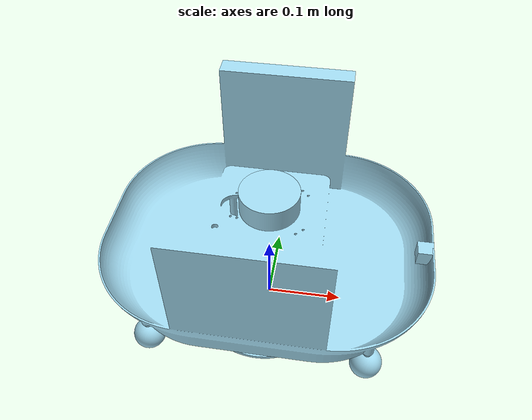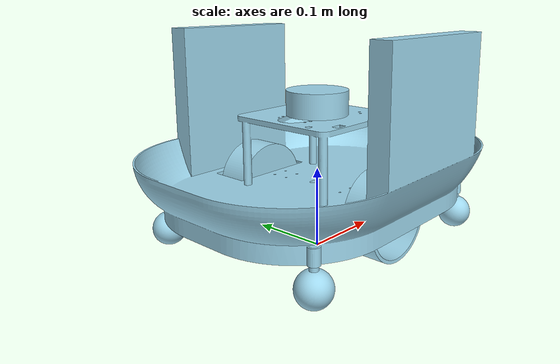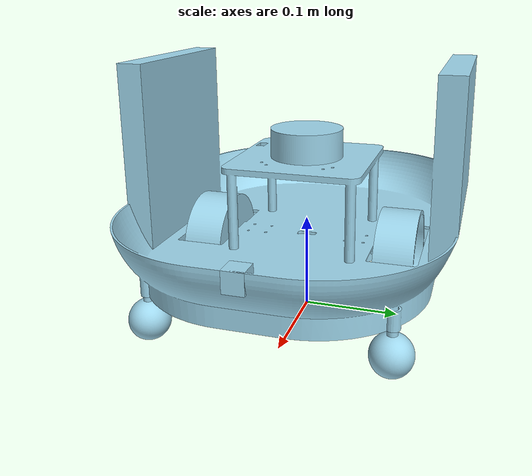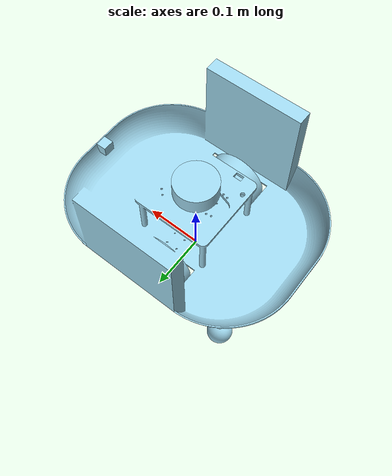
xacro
<?xml version="1.0" ?>
<robot name="servicebot" xmlns:xacro="http://www.ros.org/wiki/xacro">

<!-- Start GZ or Ignition depending on ROS 2 Version -->
<xacro:arg name="is_ignition" default="true"/>

<!-- Load Simulated or Real Hardware Interfaces -->
<xacro:arg name="is_sim" default="true"/>
<xacro:arg name="serial_device" default="/dev/ttyACM0"/>

<xacro:include filename="$(find alphabot_description)/urdf/servicebot/materials.xacro" />
<xacro:include filename="$(find alphabot_description)/urdf/servicebot/servicebot_ros2_control.xacro" />
<xacro:include filename="$(find alphabot_description)/urdf/servicebot/servicebot_gazebo.xacro" />

<link name="base_footprint"/>

<joint name="base_joint" type="fixed">
  <parent link="base_footprint"/>
  <child link="base_link"/>
  <origin xyz="0.0 0.0 0.06" rpy="0.0 0.0 0.0"/>
</joint>

<link name="base_link">
  <inertial>
    <origin xyz="0.00015928609392934425 -0.0013995503284914461 0.09565139983008487" rpy="0 0 0"/>
    <mass value="16.475311088309144"/>
    <inertia ixx="0.344952" iyy="0.14359" izz="0.364918" ixy="1e-05" iyz="-0.002295" ixz="-2.5e-05"/>
  </inertial>
  <visual>
    <origin xyz="0 0 0" rpy="${pi/2} 0 0"/>
    <geometry>
      <mesh filename="file://$(find alphabot_description)/meshes/servicebot/base_link.stl" scale="0.001 0.001 0.001"/>
    </geometry>
    <material name="silver"/>
  </visual>
  <collision>
    <origin xyz="0 0 0" rpy="${pi/2} 0 0"/>
    <geometry>
      <mesh filename="file://$(find alphabot_description)/meshes/servicebot/base_link.stl" scale="0.001 0.001 0.001"/>
    </geometry>
  </collision>
</link>

<link name="caster_back_right_link">
  <inertial>
    <origin xyz="-6.800116025829084e-15 2.7755575615628914e-17 -0.024725104605341525" rpy="0 0 0"/>
    <mass value="0.26633343616094135"/>
    <inertia ixx="4.4e-05" iyy="4.4e-05" izz="4.2e-05" ixy="0.0" iyz="0.0" ixz="0.0"/>
  </inertial>
  <visual>
    <origin xyz="0.1375 0.115 0.0" rpy="${pi/2} 0 0"/>
    <geometry>
      <mesh filename="file://$(find alphabot_description)/meshes/servicebot/Caster_Wheel_back_right_1.stl" scale="0.001 0.001 0.001"/>
    </geometry>
    <material name="silver"/>
  </visual>
  <collision>
    <origin xyz="0.1375 0.115 0.0" rpy="${pi/2} 0 0"/>
    <geometry>
      <mesh filename="file://$(find alphabot_description)/meshes/servicebot/Caster_Wheel_back_right_1.stl" scale="0.001 0.001 0.001"/>
    </geometry>
  </collision>
</link>

<link name="caster_front_right_link">
  <inertial>
    <origin xyz="-6.827871601444713e-15 0.0 -0.024725104605341525" rpy="0 0 0"/>
    <mass value="0.26633343616094135"/>
    <inertia ixx="4.4e-05" iyy="4.4e-05" izz="4.2e-05" ixy="0.0" iyz="0.0" ixz="0.0"/>
  </inertial>
  <visual>
    <origin xyz="-0.1375 0.115 0.0" rpy="${pi/2} 0 0"/>
    <geometry>
      <mesh filename="file://$(find alphabot_description)/meshes/servicebot/Caster_Wheel_front_right_1.stl" scale="0.001 0.001 0.001"/>
    </geometry>
    <material name="silver"/>
  </visual>
  <collision>
    <origin xyz="-0.1375 0.115 0.0" rpy="${pi/2} 0 0"/>
    <geometry>
      <mesh filename="file://$(find alphabot_description)/meshes/servicebot/Caster_Wheel_front_right_1.stl" scale="0.001 0.001 0.001"/>
    </geometry>
  </collision>
</link>

<link name="caster_front_left_link">
  <inertial>
    <origin xyz="-6.827871601444713e-15 1.3877787807814457e-17 -0.024725104605341525" rpy="0 0 0"/>
    <mass value="0.26633343616094135"/>
    <inertia ixx="4.4e-05" iyy="4.4e-05" izz="4.2e-05" ixy="0.0" iyz="0.0" ixz="0.0"/>
  </inertial>
  <visual>
    <origin xyz="-0.1375 -0.115 0.0" rpy="${pi/2} 0 0"/>
    <geometry>
      <mesh filename="file://$(find alphabot_description)/meshes/servicebot/Caster_Wheel_front_left_1.stl" scale="0.001 0.001 0.001"/>
    </geometry>
    <material name="silver"/>
  </visual>
  <collision>
    <origin xyz="-0.1375 -0.115 0.0" rpy="${pi/2} 0 0"/>
    <geometry>
      <mesh filename="file://$(find alphabot_description)/meshes/servicebot/Caster_Wheel_front_left_1.stl" scale="0.001 0.001 0.001"/>
    </geometry>
  </collision>
</link>

<link name="caster_back_left_link">
  <inertial>
    <origin xyz="-6.855627177060342e-15 1.3877787807814457e-17 -0.024725104605341525" rpy="0 0 0"/>
    <mass value="0.26633343616094135"/>
    <inertia ixx="4.4e-05" iyy="4.4e-05" izz="4.2e-05" ixy="0.0" iyz="0.0" ixz="0.0"/>
  </inertial>
  <visual>
    <origin xyz="0.1375 -0.115 0.0" rpy="${pi/2} 0 0"/>
    <geometry>
      <mesh filename="file://$(find alphabot_description)/meshes/servicebot/Caster_Wheel_back_left_1.stl" scale="0.001 0.001 0.001"/>
    </geometry>
    <material name="silver"/>
  </visual>
  <collision>
    <origin xyz="0.1375 -0.115 0.0" rpy="${pi/2} 0 0"/>
    <geometry>
      <mesh filename="file://$(find alphabot_description)/meshes/servicebot/Caster_Wheel_back_left_1.stl" scale="0.001 0.001 0.001"/>
    </geometry>
  </collision>
</link>

<link name="wheel_left_link">
  <inertial>
    <origin xyz="-3.833236267638553e-07 -0.006509554140127535 3.8537422030957e-07" rpy="0 0 0"/>
    <mass value="0.619496938546679"/>
    <inertia ixx="0.000683" iyy="0.001171" izz="0.000683" ixy="0.0" iyz="0.0" ixz="0.0"/>
  </inertial>
  <visual>
    <origin xyz="0.00025 0.1 -0.005999" rpy="${pi/2} 0 0"/>
    <geometry>
      <mesh filename="file://$(find alphabot_description)/meshes/servicebot/left_wheel_1.stl" scale="0.001 0.001 0.001"/>
    </geometry>
    <material name="silver"/>
  </visual>
  <collision>
    <origin xyz="0.00025 0.1 -0.005999" rpy="${pi/2} 0 0"/>
    <geometry>
      <mesh filename="file://$(find alphabot_description)/meshes/servicebot/left_wheel_1.stl" scale="0.001 0.001 0.001"/>
    </geometry>
  </collision>
</link>

<link name="wheel_right_link">
  <inertial>
    <origin xyz="-3.826109625384251e-07 0.00650955414012741 3.853742181775949e-07" rpy="0 0 0"/>
    <mass value="0.619496938546679"/>
    <inertia ixx="0.000683" iyy="0.001171" izz="0.000683" ixy="0.0" iyz="0.0" ixz="0.0"/>
  </inertial>
  <visual>
    <origin xyz="0.00025 0.1 -0.005999" rpy="${pi/2} 0 0"/>
    <geometry>
      <mesh filename="file://$(find alphabot_description)/meshes/servicebot/right_wheel_1.stl" scale="0.001 0.001 0.001"/>
    </geometry>
    <material name="silver"/>
  </visual>
  <collision>
    <origin xyz="0.00025 0.1 -0.005999" rpy="${pi/2} 0 0"/>
    <geometry>
      <mesh filename="file://$(find alphabot_description)/meshes/servicebot/right_wheel_1.stl" scale="0.001 0.001 0.001"/>
    </geometry>
  </collision>
</link>

<link name="laser_link">
  <inertial>
    <origin xyz="1.8618140946392387e-14 8.931975391188309e-09 0.015000000000000027" rpy="0 0 0"/>
    <mass value="1.0404071295755573"/>
    <inertia ixx="0.000444" iyy="0.000444" izz="0.000732" ixy="0.0" iyz="0.0" ixz="0.0"/>
  </inertial>
  <visual>
    <origin xyz="0.0 0.0 -0.108" rpy="${pi/2} 0 0"/>
    <geometry>
      <mesh filename="file://$(find alphabot_description)/meshes/servicebot/laser_link_1.stl" scale="0.001 0.001 0.001"/>
    </geometry>
    <material name="silver"/>
  </visual>
  <collision>
    <origin xyz="0.0 0.0 -0.108" rpy="${pi/2} 0 0"/>
    <geometry>
      <mesh filename="file://$(find alphabot_description)/meshes/servicebot/laser_link_1.stl" scale="0.001 0.001 0.001"/>
    </geometry>
  </collision>
</link>

<link name="camera_link">
  <inertial>
    <origin xyz="-0.010000000000000037 -5.329070518200751e-17 -0.009999999999999988" rpy="0 0 0"/>
    <mass value="0.0628"/>
    <inertia ixx="4e-06" iyy="4e-06" izz="4e-06" ixy="0.0" iyz="0.0" ixz="0.0"/>
  </inertial>
  <visual>
    <origin xyz="-0.207 0.0 -0.068" rpy="${pi/2} 0 0"/>
    <geometry>
      <mesh filename="file://$(find alphabot_description)/meshes/servicebot/camera_link_1.stl" scale="0.001 0.001 0.001"/>
    </geometry>
    <material name="silver"/>
  </visual>
  <collision>
    <origin xyz="-0.207 0.0 -0.068" rpy="${pi/2} 0 0"/>
    <geometry>
      <mesh filename="file://$(find alphabot_description)/meshes/servicebot/camera_link_1.stl" scale="0.001 0.001 0.001"/>
    </geometry>
  </collision>
</link>

<link name="imu_link">
  <inertial>
    <mass value="0.001"/>
    <origin xyz="0 0 0" rpy="0 0 0"/>
    <inertia ixx="0.00000015" ixy="0" ixz="0" iyy="0.00000015" iyz="0" izz="0.00000015"/>
  </inertial>
  <visual>
    <origin xyz="0 0 0" rpy="0 0 0"/>
    <geometry>
      <box size="0.005 0.005 0.005"/>
    </geometry>
  </visual>
  <collision>
    <origin xyz="0 0 0" rpy="0 0 0"/>
    <geometry>
      <box size="0.005 0.005 0.005"/>
    </geometry>
  </collision>
</link>

<joint name="caster_back_right_joint" type="fixed">
  <origin xyz="-0.1375 -0.115 0.0" rpy="0 0 0"/>
  <parent link="base_link"/>
  <child link="caster_back_right_link"/>
</joint>

<joint name="caster_front_right_joint" type="fixed">
  <origin xyz="0.1375 -0.115 0.0" rpy="0 0 0"/>
  <parent link="base_link"/>
  <child link="caster_front_right_link"/>
</joint>

<joint name="caster_front_left_joint" type="fixed">
  <origin xyz="0.1375 0.115 0.0" rpy="0 0 0"/>
  <parent link="base_link"/>
  <child link="caster_front_left_link"/>
</joint>

<joint name="caster_back_left_joint" type="fixed">
  <origin xyz="-0.1375 0.115 0.0" rpy="0 0 0"/>
  <parent link="base_link"/>
  <child link="caster_back_left_link"/>
</joint>

<joint name="wheel_left_joint" type="continuous">
  <origin xyz="-0.00025 0.1 0.005999" rpy="0 0 0"/>
  <parent link="base_link"/>
  <child link="wheel_left_link"/>
  <axis xyz="0.0 1.0 0.0"/>
</joint>

<joint name="wheel_right_joint" type="continuous">
  <origin xyz="-0.00025 -0.1 0.005999" rpy="0 0 0"/>
  <parent link="base_link"/>
  <child link="wheel_right_link"/>
  <axis xyz="0.0 1.0 0.0"/>
</joint>

<joint name="laser_joint" type="fixed">
  <origin xyz="0.0 0.0 0.108" rpy="0 0 0"/>
  <parent link="base_link"/>
  <child link="laser_link"/>
</joint>

<joint name="camera_joint" type="fixed">
  <origin xyz="0.207 0.0 0.068" rpy="0 0 0"/>
  <parent link="base_link"/>
  <child link="camera_link"/>
</joint>

<joint name="imu_joint" type="fixed">
  <origin xyz="0.0 0.0 0.0" rpy="0 0 0"/>
  <parent link="base_link"/>
  <child link="imu_link"/>
</joint>

</robot>

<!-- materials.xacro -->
<robot name="servicebot" xmlns:xacro="http://www.ros.org/wiki/xacro" >

<material name="silver">
  <color rgba="0.627 0.851 0.937 1.000"/>
</material>

</robot>

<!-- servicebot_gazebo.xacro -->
<robot xmlns:xacro="http://www.ros.org/wiki/xacro" name="servicebot">

<xacro:property name="body_color" value="Gazebo/SkyBlue" />

<gazebo reference="base_link">
  <material>${body_color}</material>
  <mu1>0.2</mu1>
  <mu2>0.2</mu2>
  <self_collide>true</self_collide>
  <gravity>true</gravity>
</gazebo>

<gazebo reference="caster_back_right_link">
  <material>${body_color}</material>
  <mu1>0.2</mu1>
  <mu2>0.2</mu2>
  <self_collide>true</self_collide>
</gazebo>

<gazebo reference="caster_front_right_link">
  <material>${body_color}</material>
  <mu1>0.2</mu1>
  <mu2>0.2</mu2>
  <self_collide>true</self_collide>
</gazebo>

<gazebo reference="caster_front_left_link">
  <material>${body_color}</material>
  <mu1>0.2</mu1>
  <mu2>0.2</mu2>
  <self_collide>true</self_collide>
</gazebo>

<gazebo reference="caster_back_left_link">
  <material>${body_color}</material>
  <mu1>0.2</mu1>
  <mu2>0.2</mu2>
  <self_collide>true</self_collide>
</gazebo>

<gazebo reference="wheel_left_link">
  <material>${body_color}</material>
  <mu1>0.2</mu1>
  <mu2>0.2</mu2>
  <self_collide>true</self_collide>
</gazebo>

<gazebo reference="wheel_right_link">
  <material>${body_color}</material>
  <mu1>0.2</mu1>
  <mu2>0.2</mu2>
  <self_collide>true</self_collide>
</gazebo>

<gazebo reference="camera_link">
  <material>${body_color}</material>
  <mu1>0.2</mu1>
  <mu2>0.2</mu2>
  <self_collide>true</self_collide>
</gazebo>

<!-- ros2_control Gazebo plugin -->
<gazebo>
  <plugin filename="gz_ros2_control-system" name="gz_ros2_control::GazeboSimROS2ControlPlugin">
    <parameters>$(find alphabot_controller)/config/servicebot/controllers.yaml</parameters>
  </plugin>
  <plugin filename="gz-sim-imu-system" name="gz::sim::systems::Imu">
  </plugin>
  <plugin filename="gz-sim-sensors-system" name="gz::sim::systems::Sensors">
    <render_engine>ogre2</render_engine>
  </plugin>
</gazebo>

<!-- IMU -->
<gazebo reference="imu_link">
  <sensor name="imu" type="imu">
    <always_on>true</always_on>
    <update_rate>100</update_rate>
    <gz_frame_id>imu_link</gz_frame_id>
    <topic>imu</topic>
    <imu>
      <angular_velocity>
        <x>
          <noise type="gaussian">
            <mean>0.0</mean>
            <stddev>2e-4</stddev>
          </noise>
        </x>
        <y>
          <noise type="gaussian">
            <mean>0.0</mean>
            <stddev>2e-4</stddev>
          </noise>
        </y>
        <z>
          <noise type="gaussian">
            <mean>0.0</mean>
            <stddev>2e-4</stddev>
          </noise>
        </z>
      </angular_velocity>
      <linear_acceleration>
        <x>
          <noise type="gaussian">
            <mean>0.0</mean>
            <stddev>1.7e-2</stddev>
          </noise>
        </x>
        <y>
          <noise type="gaussian">
            <mean>0.0</mean>
            <stddev>1.7e-2</stddev>
          </noise>
        </y>
        <z>
          <noise type="gaussian">
            <mean>0.0</mean>
            <stddev>1.7e-2</stddev>
          </noise>
        </z>
      </linear_acceleration>
    </imu>
  </sensor>
</gazebo>

<!-- 2D Laser Sensor -->
<gazebo reference="laser_link">
  <material>${body_color}</material>
  <sensor name="lidar" type="gpu_lidar">
    <always_on>true</always_on>
    <visualize>true</visualize>
    <topic>scan</topic>
    <update_rate>5</update_rate>
    <gz_frame_id>laser_link</gz_frame_id>
    <lidar>
      <scan>
        <horizontal>
          <samples>360</samples>
          <resolution>1.00000</resolution>
          <min_angle>-3.14159</min_angle>
          <max_angle>3.14159</max_angle>
        </horizontal>
      </scan>
      <range>
        <min>0.10000</min>
        <max>6.0</max>
        <resolution>0.02</resolution>
      </range>
      <noise>
        <type>gaussian</type>
        <mean>0.0</mean>
        <stddev>0.01</stddev>
      </noise>
    </lidar>
  </sensor>
</gazebo>

</robot>
